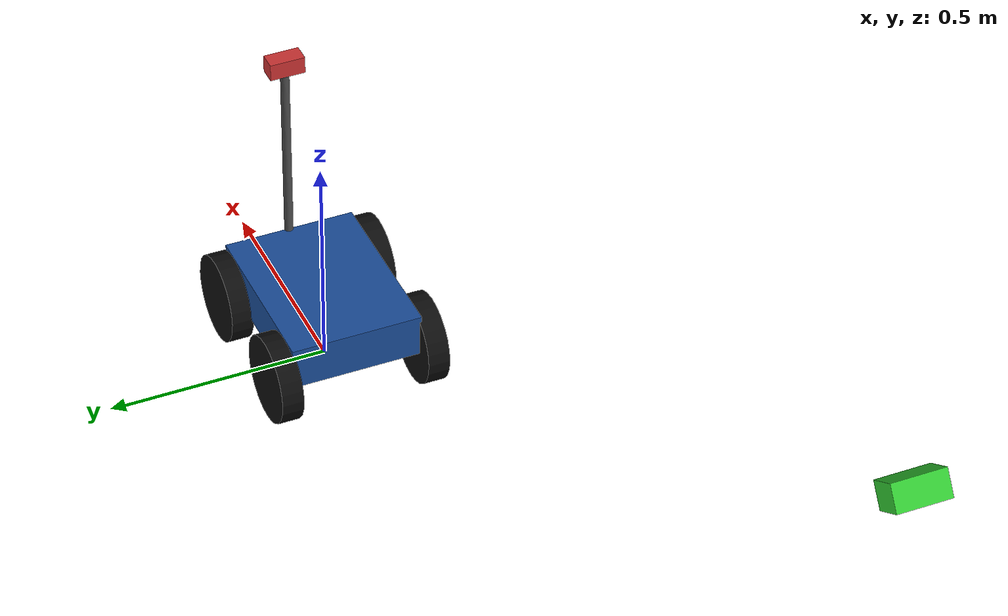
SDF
<?xml version='1.0'?>
<sdf version="1.6">
  <model name="generic_rover">

    <link name="base_link">
      <pose>0 0 0.150000 0 0 0</pose>
      <inertial>
        <mass>5.0</mass>
        <inertia>
          <ixx>0.041667</ixx>
          <ixy>0</ixy>
          <ixz>0</ixz>
          <iyy>0.070833</iyy>
          <iyz>0</iyz>
          <izz>0.104167</izz>
        </inertia>
      </inertial>
      <collision name="base_collision">
        <geometry>
          <box>
            <size>0.4 0.3 0.1</size>
          </box>
        </geometry>
      </collision>
      <visual name="base_visual">
        <geometry>
          <box>
            <size>0.4 0.3 0.1</size>
          </box>
        </geometry>
        <material>
          <ambient>0.1 0.3 0.6 1</ambient>
          <diffuse>0.1 0.3 0.6 1</diffuse>
        </material>
      </visual>
      <!-- Camera mast (visual only) up to the camera_link offset. -->
      <visual name="camera_mast_visual">
        <pose>0.200000 0 0.275000 0 0 0</pose>
        <geometry>
          <cylinder>
            <radius>0.01</radius>
            <length>0.450000</length>
          </cylinder>
        </geometry>
        <material>
          <ambient>0.3 0.3 0.3 1</ambient>
          <diffuse>0.3 0.3 0.3 1</diffuse>
        </material>
      </visual>
    </link>

    <link name="front_left_wheel">
      <pose>0.150000 0.170000 0.100000 -1.5707963 0 0</pose>
      <inertial>
        <mass>0.5</mass>
        <inertia>
          <ixx>0.00135</ixx>
          <ixy>0</ixy>
          <ixz>0</ixz>
          <iyy>0.00135</iyy>
          <iyz>0</iyz>
          <izz>0.0025</izz>
        </inertia>
      </inertial>
      <collision name="front_left_wheel_collision">
        <geometry>
          <cylinder>
            <radius>0.100000</radius>
            <length>0.050000</length>
          </cylinder>
        </geometry>
        <surface>
          <friction>
            <ode>
              <mu>0.05</mu>
              <mu2>0.05</mu2>
              <fdir1>1 0 0</fdir1>
            </ode>
          </friction>
        </surface>
      </collision>
      <visual name="front_left_wheel_visual">
        <geometry>
          <cylinder>
            <radius>0.100000</radius>
            <length>0.050000</length>
          </cylinder>
        </geometry>
        <material>
          <ambient>0.05 0.05 0.05 1</ambient>
          <diffuse>0.05 0.05 0.05 1</diffuse>
        </material>
      </visual>
    </link>

    <link name="front_right_wheel">
      <pose>0.150000 -0.170000 0.100000 -1.5707963 0 0</pose>
      <inertial>
        <mass>0.5</mass>
        <inertia>
          <ixx>0.00135</ixx>
          <ixy>0</ixy>
          <ixz>0</ixz>
          <iyy>0.00135</iyy>
          <iyz>0</iyz>
          <izz>0.0025</izz>
        </inertia>
      </inertial>
      <collision name="front_right_wheel_collision">
        <geometry>
          <cylinder>
            <radius>0.100000</radius>
            <length>0.050000</length>
          </cylinder>
        </geometry>
        <surface>
          <friction>
            <ode>
              <mu>0.05</mu>
              <mu2>0.05</mu2>
              <fdir1>1 0 0</fdir1>
            </ode>
          </friction>
        </surface>
      </collision>
      <visual name="front_right_wheel_visual">
        <geometry>
          <cylinder>
            <radius>0.100000</radius>
            <length>0.050000</length>
          </cylinder>
        </geometry>
        <material>
          <ambient>0.05 0.05 0.05 1</ambient>
          <diffuse>0.05 0.05 0.05 1</diffuse>
        </material>
      </visual>
    </link>

    <link name="rear_left_wheel">
      <pose>-0.150000 0.170000 0.100000 -1.5707963 0 0</pose>
      <inertial>
        <mass>0.5</mass>
        <inertia>
          <ixx>0.00135</ixx>
          <ixy>0</ixy>
          <ixz>0</ixz>
          <iyy>0.00135</iyy>
          <iyz>0</iyz>
          <izz>0.0025</izz>
        </inertia>
      </inertial>
      <collision name="rear_left_wheel_collision">
        <geometry>
          <cylinder>
            <radius>0.100000</radius>
            <length>0.050000</length>
          </cylinder>
        </geometry>
        <surface>
          <friction>
            <ode>
              <mu>0.05</mu>
              <mu2>0.05</mu2>
              <fdir1>1 0 0</fdir1>
            </ode>
          </friction>
        </surface>
      </collision>
      <visual name="rear_left_wheel_visual">
        <geometry>
          <cylinder>
            <radius>0.100000</radius>
            <length>0.050000</length>
          </cylinder>
        </geometry>
        <material>
          <ambient>0.05 0.05 0.05 1</ambient>
          <diffuse>0.05 0.05 0.05 1</diffuse>
        </material>
      </visual>
    </link>

    <link name="rear_right_wheel">
      <pose>-0.150000 -0.170000 0.100000 -1.5707963 0 0</pose>
      <inertial>
        <mass>0.5</mass>
        <inertia>
          <ixx>0.00135</ixx>
          <ixy>0</ixy>
          <ixz>0</ixz>
          <iyy>0.00135</iyy>
          <iyz>0</iyz>
          <izz>0.0025</izz>
        </inertia>
      </inertial>
      <collision name="rear_right_wheel_collision">
        <geometry>
          <cylinder>
            <radius>0.100000</radius>
            <length>0.050000</length>
          </cylinder>
        </geometry>
        <surface>
          <friction>
            <ode>
              <mu>0.05</mu>
              <mu2>0.05</mu2>
              <fdir1>1 0 0</fdir1>
            </ode>
          </friction>
        </surface>
      </collision>
      <visual name="rear_right_wheel_visual">
        <geometry>
          <cylinder>
            <radius>0.100000</radius>
            <length>0.050000</length>
          </cylinder>
        </geometry>
        <material>
          <ambient>0.05 0.05 0.05 1</ambient>
          <diffuse>0.05 0.05 0.05 1</diffuse>
        </material>
      </visual>
    </link>

    <link name="front_left_wheel_hub">
      <pose>0.150000 0.170000 0.100000 0 0 0</pose>
      <inertial>
        <mass>0.05</mass>
        <inertia>
          <ixx>0.00001</ixx>
          <ixy>0</ixy>
          <ixz>0</ixz>
          <iyy>0.00001</iyy>
          <iyz>0</iyz>
          <izz>0.00001</izz>
        </inertia>
      </inertial>
    </link>

    <link name="front_right_wheel_hub">
      <pose>0.150000 -0.170000 0.100000 0 0 0</pose>
      <inertial>
        <mass>0.05</mass>
        <inertia>
          <ixx>0.00001</ixx>
          <ixy>0</ixy>
          <ixz>0</ixz>
          <iyy>0.00001</iyy>
          <iyz>0</iyz>
          <izz>0.00001</izz>
        </inertia>
      </inertial>
    </link>

    <link name="rear_left_wheel_hub">
      <pose>-0.150000 0.170000 0.100000 0 0 0</pose>
      <inertial>
        <mass>0.05</mass>
        <inertia>
          <ixx>0.00001</ixx>
          <ixy>0</ixy>
          <ixz>0</ixz>
          <iyy>0.00001</iyy>
          <iyz>0</iyz>
          <izz>0.00001</izz>
        </inertia>
      </inertial>
    </link>

    <link name="rear_right_wheel_hub">
      <pose>-0.150000 -0.170000 0.100000 0 0 0</pose>
      <inertial>
        <mass>0.05</mass>
        <inertia>
          <ixx>0.00001</ixx>
          <ixy>0</ixy>
          <ixz>0</ixz>
          <iyy>0.00001</iyy>
          <iyz>0</iyz>
          <izz>0.00001</izz>
        </inertia>
      </inertial>
    </link>

    <joint name="front_left_wheel_steer_joint" type="revolute">
      <parent>base_link</parent>
      <child>front_left_wheel_hub</child>
      <axis>
        <xyz>0 0 1</xyz>
        <use_parent_model_frame>true</use_parent_model_frame>
      </axis>
    </joint>

    <joint name="front_left_wheel_joint" type="revolute">
      <parent>front_left_wheel_hub</parent>
      <child>front_left_wheel</child>
      <axis>
        <xyz>0 1 0</xyz>
        <use_parent_model_frame>true</use_parent_model_frame>
      </axis>
    </joint>

    <joint name="front_right_wheel_steer_joint" type="revolute">
      <parent>base_link</parent>
      <child>front_right_wheel_hub</child>
      <axis>
        <xyz>0 0 1</xyz>
        <use_parent_model_frame>true</use_parent_model_frame>
      </axis>
    </joint>

    <joint name="front_right_wheel_joint" type="revolute">
      <parent>front_right_wheel_hub</parent>
      <child>front_right_wheel</child>
      <axis>
        <xyz>0 1 0</xyz>
        <use_parent_model_frame>true</use_parent_model_frame>
      </axis>
    </joint>

    <joint name="rear_left_wheel_steer_joint" type="revolute">
      <parent>base_link</parent>
      <child>rear_left_wheel_hub</child>
      <axis>
        <xyz>0 0 1</xyz>
        <use_parent_model_frame>true</use_parent_model_frame>
      </axis>
    </joint>

    <joint name="rear_left_wheel_joint" type="revolute">
      <parent>rear_left_wheel_hub</parent>
      <child>rear_left_wheel</child>
      <axis>
        <xyz>0 1 0</xyz>
        <use_parent_model_frame>true</use_parent_model_frame>
      </axis>
    </joint>

    <joint name="rear_right_wheel_steer_joint" type="revolute">
      <parent>base_link</parent>
      <child>rear_right_wheel_hub</child>
      <axis>
        <xyz>0 0 1</xyz>
        <use_parent_model_frame>true</use_parent_model_frame>
      </axis>
    </joint>

    <joint name="rear_right_wheel_joint" type="revolute">
      <parent>rear_right_wheel_hub</parent>
      <child>rear_right_wheel</child>
      <axis>
        <xyz>0 1 0</xyz>
        <use_parent_model_frame>true</use_parent_model_frame>
      </axis>
    </joint>

    <link name="camera_link">
      <pose>0.200000 0 0.650000 0 0 0</pose>
      <inertial>
        <mass>0.05</mass>
        <inertia>
          <ixx>0.00001</ixx>
          <ixy>0</ixy>
          <ixz>0</ixz>
          <iyy>0.00001</iyy>
          <iyz>0</iyz>
          <izz>0.00001</izz>
        </inertia>
      </inertial>
      <visual name="camera_visual">
        <geometry>
          <box>
            <size>0.04 0.08 0.04</size>
          </box>
        </geometry>
        <material>
          <ambient>0.8 0.2 0.2 1</ambient>
          <diffuse>0.8 0.2 0.2 1</diffuse>
        </material>
      </visual>
      <sensor type="depth" name="rover_camera_sensor">
        <update_rate>15.0</update_rate>
        <always_on>true</always_on>
        <visualize>false</visualize>
        <camera name="rover_camera">
          <horizontal_fov>1.7453293</horizontal_fov>
          <image>
            <width>640</width>
            <height>480</height>
            <format>R8G8B8</format>
          </image>
          <clip>
            <near>0.05</near>
            <far>100.0</far>
          </clip>
        </camera>
        <plugin name="camera_controller" filename="libgazebo_ros_openni_kinect.so">
          <baseline>0.2</baseline>
          <alwaysOn>true</alwaysOn>
          <updateRate>15.0</updateRate>
          <cameraName>rover/camera</cameraName>
          <imageTopicName>image_raw</imageTopicName>
          <cameraInfoTopicName>camera_info</cameraInfoTopicName>
          <depthImageTopicName>depth/image_raw</depthImageTopicName>
          <depthImageInfoTopicName>depth/camera_info</depthImageInfoTopicName>
          <pointCloudTopicName>depth/points</pointCloudTopicName>
          <frameName>camera_link</frameName>
          <pointCloudCutoff>0.05</pointCloudCutoff>
          <pointCloudCutoffMax>100.0</pointCloudCutoffMax>
          <distortionK1>0</distortionK1>
          <distortionK2>0</distortionK2>
          <distortionK3>0</distortionK3>
          <distortionT1>0</distortionT1>
          <distortionT2>0</distortionT2>
          <CxPrime>0</CxPrime>
          <Cx>0</Cx>
          <Cy>0</Cy>
          <focalLength>0</focalLength>
          <hackBaseline>0</hackBaseline>
        </plugin>
      </sensor>
    </link>

    <joint name="camera_joint" type="fixed">
      <parent>base_link</parent>
      <child>camera_link</child>
    </joint>

    <link name="camera_link_chase">
      <pose>-2.5 0 1.65 0 0.5833730 0</pose>
      <inertial>
        <mass>0.05</mass>
        <inertia>
          <ixx>0.00001</ixx>
          <ixy>0</ixy>
          <ixz>0</ixz>
          <iyy>0.00001</iyy>
          <iyz>0</iyz>
          <izz>0.00001</izz>
        </inertia>
      </inertial>
      <visual name="camera_chase_visual">
        <geometry>
          <box>
            <size>0.06 0.1 0.05</size>
          </box>
        </geometry>
        <material>
          <ambient>0.2 0.8 0.2 1</ambient>
          <diffuse>0.2 0.8 0.2 1</diffuse>
        </material>
      </visual>
      <sensor type="depth" name="rover_camera_chase_sensor">
        <update_rate>15.0</update_rate>
        <always_on>true</always_on>
        <visualize>false</visualize>
        <camera name="rover_camera_chase">
          <horizontal_fov>1.7453293</horizontal_fov>
          <image>
            <width>640</width>
            <height>480</height>
            <format>R8G8B8</format>
          </image>
          <clip>
            <near>0.05</near>
            <far>100.0</far>
          </clip>
        </camera>
        <plugin name="camera_chase_controller" filename="libgazebo_ros_openni_kinect.so">
          <baseline>0.2</baseline>
          <alwaysOn>true</alwaysOn>
          <updateRate>15.0</updateRate>
          <cameraName>rover/camera_chase</cameraName>
          <imageTopicName>image_raw</imageTopicName>
          <cameraInfoTopicName>camera_info</cameraInfoTopicName>
          <depthImageTopicName>depth/image_raw</depthImageTopicName>
          <depthImageInfoTopicName>depth/camera_info</depthImageInfoTopicName>
          <pointCloudTopicName>depth/points</pointCloudTopicName>
          <frameName>camera_link_chase</frameName>
          <pointCloudCutoff>0.05</pointCloudCutoff>
          <pointCloudCutoffMax>100.0</pointCloudCutoffMax>
          <distortionK1>0</distortionK1>
          <distortionK2>0</distortionK2>
          <distortionK3>0</distortionK3>
          <distortionT1>0</distortionT1>
          <distortionT2>0</distortionT2>
          <CxPrime>0</CxPrime>
          <Cx>0</Cx>
          <Cy>0</Cy>
          <focalLength>0</focalLength>
          <hackBaseline>0</hackBaseline>
        </plugin>
      </sensor>
    </link>

    <joint name="camera_joint_chase" type="fixed">
      <parent>base_link</parent>
      <child>camera_link_chase</child>
    </joint>

    <plugin name="crab_steer_controller" filename="libnepi_crab_steer_plugin.so">
      <robotNamespace>/rover</robotNamespace>
      <commandTopic>cmd_vel</commandTopic>
      <odometryTopic>odom</odometryTopic>
      <odometryFrame>odom</odometryFrame>
      <odometryRate>30.0</odometryRate>
      <robotBaseFrame>base_link</robotBaseFrame>
      <wheelRadius>0.1</wheelRadius>
      <wheel steerJoint="front_left_wheel_steer_joint" spinJoint="front_left_wheel_joint" x="0.15" y="0.17"/>
      <wheel steerJoint="front_right_wheel_steer_joint" spinJoint="front_right_wheel_joint" x="0.15" y="-0.17"/>
      <wheel steerJoint="rear_left_wheel_steer_joint" spinJoint="rear_left_wheel_joint" x="-0.15" y="0.17"/>
      <wheel steerJoint="rear_right_wheel_steer_joint" spinJoint="rear_right_wheel_joint" x="-0.15" y="-0.17"/>
    </plugin>

  </model>
</sdf>
